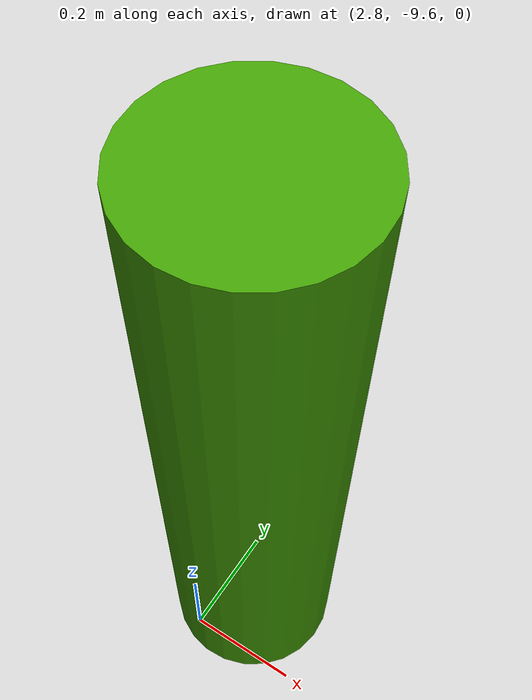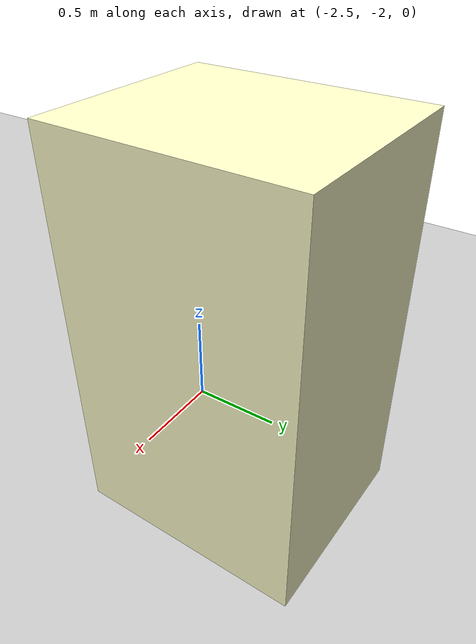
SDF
<sdf version="1.6">
 <world name="default">
  <atmosphere type="adiabatic"/>
  <wind><linear_velocity>0 0 0</linear_velocity></wind>
  <gravity>0 0 -9.8</gravity>
  <model name="dyn_box">
   <pose>-0.836987 -5.07228 1.45641 0 -0 1.68885</pose>
   <static>0</static>
   <allow_auto_disable>0</allow_auto_disable>
   <link name="link">
    <collision name="collision">
     <geometry><box><size>3.2082 0.673247 2.91282</size></box></geometry>
     <max_contacts>20</max_contacts>
    </collision>
    <visual name="visual">
     <geometry><box><size>3.2082 0.673247 2.91282</size></box></geometry>
     <material>
      <ambient>0.572549 0.168627 0.0196078 1</ambient>
      <diffuse>0.5725490196078431 0.16862745098039217 0.0196078431372549 1</diffuse>
     </material>
     <transparency>0.0</transparency>
    </visual>
    <inertial>
     <inertia>
      <ixx>0.07448160704822324</ixx>
      <iyy>0.15647544727908266</iyy>
      <izz>0.08954819736927504</izz>
      <ixy>0.0</ixy>
      <ixz>0.0</ixz>
      <iyz>0.0</iyz>
     </inertia>
     <mass>0.1</mass>
    </inertial>
   </link>
  </model>
  <model name="static_cylinder">
   <pose>2.85409 -9.49337 0.57719 0 -0 1.77099</pose>
   <static>1</static>
   <allow_auto_disable>0</allow_auto_disable>
   <link name="link">
    <collision name="collision">
     <geometry>
      <cylinder><radius>0.1471110618972249</radius><length>1.1543798945491015</length></cylinder>
     </geometry>
     <max_contacts>20</max_contacts>
    </collision>
    <visual name="visual">
     <geometry>
      <cylinder><radius>0.1471110618972249</radius><length>1.1543798945491015</length></cylinder>
     </geometry>
     <material>
      <ambient>0.254902 0.611765 0.0117647 1</ambient>
      <diffuse>0.2549019607843137 0.611764705882353 0.011764705882352941 1</diffuse>
     </material>
     <transparency>0.0</transparency>
    </visual>
   </link>
  </model>
  <model name="dyn_box_1">
   <pose>-2.04009 -1.40783 0.954948 0 -0 1.55511</pose>
   <static>0</static>
   <allow_auto_disable>0</allow_auto_disable>
   <link name="link">
    <collision name="collision">
     <geometry><box><size>1.12874 0.954125 1.9099</size></box></geometry>
     <max_contacts>20</max_contacts>
    </collision>
    <visual name="visual">
     <geometry><box><size>1.12874 0.954125 1.9099</size></box></geometry>
     <material><ambient>1 1 0.796078 1</ambient><diffuse>1.0 1.0 0.796078431372549 1</diffuse></material>
     <transparency>0.0</transparency>
    </visual>
    <inertial>
     <inertia>
      <ixx>0.2486258559034994</ixx>
      <iyy>0.26846491898613567</iyy>
      <izz>0.11915238966076178</izz>
      <ixy>0.0</ixy>
      <ixz>0.0</ixz>
      <iyz>0.0</iyz>
     </inertia>
     <mass>0.6545578102397328</mass>
    </inertial>
   </link>
  </model>
  <model name="static_cylinder_1">
   <pose>3.12606 -1.69242 0.697756 0 0 -1.22816</pose>
   <static>1</static>
   <allow_auto_disable>0</allow_auto_disable>
   <link name="link">
    <collision name="collision">
     <geometry>
      <cylinder><radius>1.7404024669451188</radius><length>1.3955118030252742</length></cylinder>
     </geometry>
     <max_contacts>20</max_contacts>
    </collision>
    <visual name="visual">
     <geometry>
      <cylinder><radius>1.7404024669451188</radius><length>1.3955118030252742</length></cylinder>
     </geometry>
     <material>
      <ambient>0.988235 0.988235 0.505882 1</ambient>
      <diffuse>0.9882352941176471 0.9882352941176471 0.5058823529411764 1</diffuse>
     </material>
     <transparency>0.0</transparency>
    </visual>
   </link>
  </model>
  <include>
   <uri>model://ceiling_5</uri>
   <pose>0 0 3 0 -0 0</pose>
   <name>ceiling_5</name>
   <static>1</static>
  </include>
  <include><uri>model://ground_plane</uri><name>ground_plane</name><static>1</static></include>
  <include><uri>model://sun</uri></include>
  <physics name="default_physics" default="0" type="ode">
   <gravity>0 0 -9.8066</gravity>
   <ode>
    <solver>
     <type>quick</type>
     <iters>10</iters>
     <sor>1.3</sor>
     <use_dynamic_moi_rescaling>0</use_dynamic_moi_rescaling>
    </solver>
    <constraints>
     <cfm>0</cfm>
     <erp>0.2</erp>
     <contact_max_correcting_vel>100</contact_max_correcting_vel>
     <contact_surface_layer>0.001</contact_surface_layer>
    </constraints>
   </ode>
   <max_step_size>0.004</max_step_size>
   <real_time_factor>1</real_time_factor>
   <real_time_update_rate>250</real_time_update_rate>
   <magnetic_field>6.0e-6 2.3e-5 -4.2e-5</magnetic_field>
  </physics>
  <scene>
   <ambient>0.8 0.8 0.8 1</ambient>
   <background>0.8 0.9 1 1</background>
   <shadows>false</shadows>
   <grid>false</grid>
   <origin_visual>false</origin_visual>
  </scene>
 </world>
</sdf>

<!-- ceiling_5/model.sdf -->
<sdf version="1.6">
  <model name="ceiling_5">
    <pose frame="">0 0 4 0 -0 0</pose>
    <static>1</static>
    <self_collide>0</self_collide>
    <allow_auto_disable>0</allow_auto_disable>
    <link name="mesh">
      <kinematic>0</kinematic>
      <gravity>1</gravity>
      <self_collide>0</self_collide>
      <collision name="collision">
        <geometry>
          <mesh>
            <uri>model://ceiling_5/meshes/sSuWgHZocb.stl</uri>
            <scale>1 1 1</scale>
          </mesh>
        </geometry>
        <pose frame="">-5.84954 -4.19737 -0.075 0 -0 0</pose>
        <max_contacts>20</max_contacts>
      </collision>
      <visual name="visual">
        <geometry>
          <mesh>
            <uri>model://ceiling_5/meshes/jaIVolwkoY.stl</uri>
            <scale>1 1 1</scale>
          </mesh>
        </geometry>
        <material>
          <ambient>0.521569 0.639216 0.698039 1</ambient>
          <diffuse>0.5215686274509804 0.6392156862745098 0.6980392156862745 1</diffuse>
        </material>
        <pose frame="">-5.84954 -4.19737 -0.075 0 -0 0</pose>
        <cast_shadows>1</cast_shadows>
        <transparency>0.0</transparency>
      </visual>
      <pose frame="">0 0 0 0 -0 0</pose>
    </link>
  </model>
</sdf>
